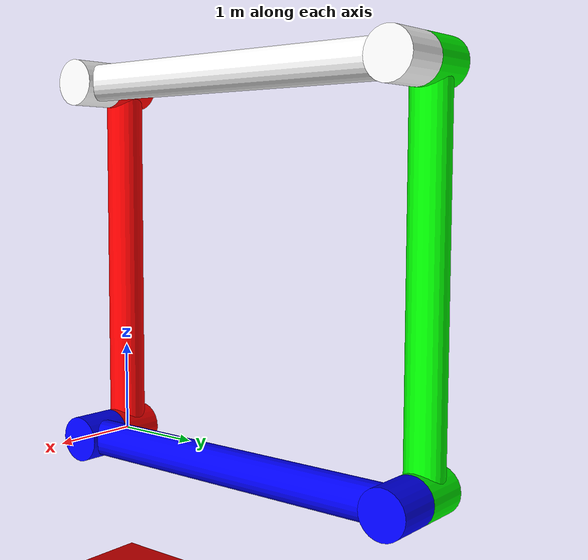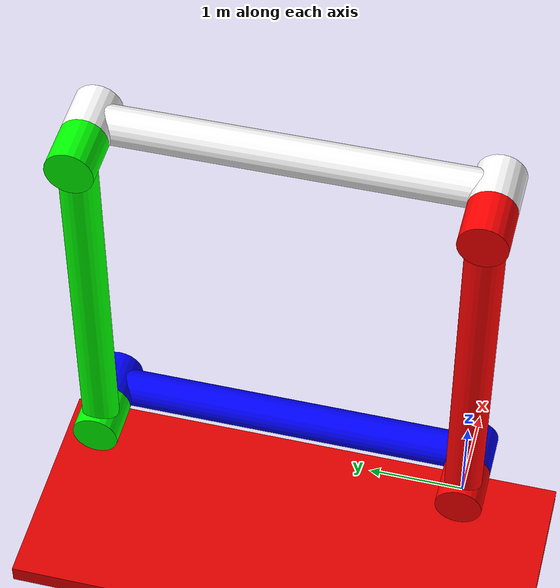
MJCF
<mujoco>
    <compiler inertiafromgeom="true"/>
    <option timestep="0.002" />
    <asset>
        <material name="blue_" rgba="0 0 1 1" />
        <material name="green" rgba="0 1 0 1" />
        <material name="red__" rgba="1 0 0 1" />
        <material name="white" rgba="1 1 1 1" />
    </asset>
    <worldbody>
        <geom type="box" size="10 10 0.1" pos="0 0 -2" rgba=".9 0 0 1" />
        <light diffuse=".5 .5 .5" pos="0 0 3" dir="0 0 -1" />
        <body name="link_1" pos="0 0 0">
            <body name="link_4" pos="0.5 0 4" euler="0 0 0">
                <joint name="hinge_3" pos="0 0 0" axis="1 0 0" />
                <geom type="cylinder" size=".2    2" pos="0 2 0" euler="90 0 0" material="white" />
                <geom type="cylinder" size=".25 .25" pos="0 0 0" euler="0 90 0" material="white" />
                <geom type="cylinder" size=".25 .25" pos="0 4 0" euler="0 90 0" material="white" />
            </body>
            <geom type="cylinder" size=".2    2" pos="0 0 2" euler="0 0 0" material="red__" />
            <geom type="cylinder" size=".25 .25" pos="0 0 4" euler="0 90 0" material="red__" />
            <geom type="cylinder" size=".25 .25" pos="0 0 0" euler="0 90 0" material="red__" />
            <body name="link_2" pos="0.5 0 0" euler="0 0 0">
                <joint name="hinge_1" pos="0 0 0" axis="1 0 0" />
                <geom type="cylinder" size=".2    2" pos="0 2 0" euler="90 0 0" material="blue_" />
                <geom type="cylinder" size=".25 .25" pos="0 4 0" euler="0 90 0" material="blue_" />
                <geom type="cylinder" size=".25 .25" pos="0 0 0" euler="0 90 0" material="blue_" />
                <body name="link_3" pos="-0.5 4 0" euler="0 0 0">
                    <joint name="hinge_2" pos="0 0 0" axis="1 0 0" />
                    <geom type="cylinder" size=".2    2" pos="0 0 2" euler="0 0 0" material="green" />
                    <geom type="cylinder" size=".25 .25" pos="0 0 0" euler="0 90 0" material="green" />
                    <geom type="cylinder" size=".25 .25" pos="0 0 4" euler="0 90 0" material="green" />
                </body>
            </body>
        </body>
    </worldbody>
    <equality>
        <connect name="kinematic_link" active="true" body1="link_3" body2="link_4" anchor="0 0 4" />
    </equality>
</mujoco>
